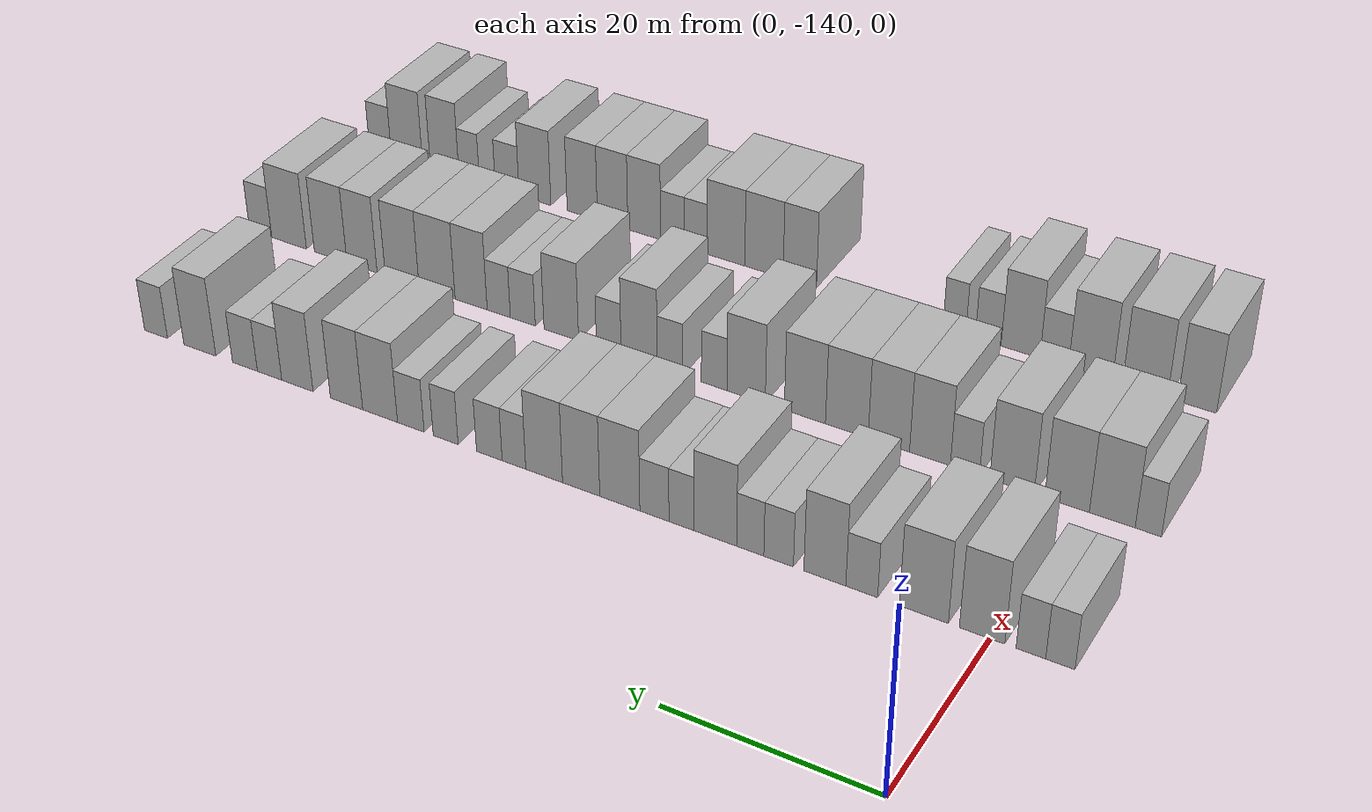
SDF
<sdf version="1.6">
 <world name="default">
  <model name="building_27">
   <static>1</static>
   <pose>25.0000 -146.1380 0 0.000000 0.000000 0.000000</pose>
   <link name="link">
    <pose>0 0 3.00 0 0 0</pose>
    <collision name="collision"><geometry><box><size>10.0000 2.5580 6.0000</size></box></geometry></collision>
    <visual name="visual">
     <cast_shadows>0</cast_shadows>
     <geometry><box><size>10.0000 2.5580 6.0000</size></box></geometry>
     <material>
      <script>
       <uri>model://HANNAS_wall/materials/scripts</uri>
       <uri>model://HANNAS_wall/materials/textures</uri>
       <name>vrc/HANNAS_wall</name>
      </script>
     </material>
    </visual>
   </link>
  </model>
  <model name="building_28">
   <static>1</static>
   <pose>25.0000 -143.5564 0 0.000000 0.000000 0.000000</pose>
   <link name="link">
    <pose>0 0 3.00 0 0 0</pose>
    <collision name="collision"><geometry><box><size>10.0000 2.6051 6.0000</size></box></geometry></collision>
    <visual name="visual">
     <cast_shadows>0</cast_shadows>
     <geometry><box><size>10.0000 2.6051 6.0000</size></box></geometry>
     <material>
      <script>
       <uri>model://HANNAS_wall/materials/scripts</uri>
       <uri>model://HANNAS_wall/materials/textures</uri>
       <name>vrc/HANNAS_wall</name>
      </script>
     </material>
    </visual>
   </link>
  </model>
  <model name="building_29">
   <static>1</static>
   <pose>25.0000 -139.2186 0 0.000000 0.000000 0.000000</pose>
   <link name="link">
    <pose>0 0 4.50 0 0 0</pose>
    <collision name="collision"><geometry><box><size>10.0000 4.0704 9.0000</size></box></geometry></collision>
    <visual name="visual">
     <cast_shadows>0</cast_shadows>
     <geometry><box><size>10.0000 4.0704 9.0000</size></box></geometry>
     <material>
      <script>
       <uri>model://HANNAS_wall/materials/scripts</uri>
       <uri>model://HANNAS_wall/materials/textures</uri>
       <name>vrc/HANNAS_wall</name>
      </script>
     </material>
    </visual>
   </link>
  </model>
  <model name="building_30">
   <static>1</static>
   <pose>25.0000 -133.9359 0 0.000000 0.000000 0.000000</pose>
   <link name="link">
    <pose>0 0 4.50 0 0 0</pose>
    <collision name="collision"><geometry><box><size>10.0000 4.4950 9.0000</size></box></geometry></collision>
    <visual name="visual">
     <cast_shadows>0</cast_shadows>
     <geometry><box><size>10.0000 4.4950 9.0000</size></box></geometry>
     <material>
      <script>
       <uri>model://HANNAS_wall/materials/scripts</uri>
       <uri>model://HANNAS_wall/materials/textures</uri>
       <name>vrc/HANNAS_wall</name>
      </script>
     </material>
    </visual>
   </link>
  </model>
  <model name="building_31">
   <static>1</static>
   <pose>25.0000 -128.1968 0 0.000000 0.000000 0.000000</pose>
   <link name="link">
    <pose>0 0 3.00 0 0 0</pose>
    <collision name="collision"><geometry><box><size>10.0000 2.9834 6.0000</size></box></geometry></collision>
    <visual name="visual">
     <cast_shadows>0</cast_shadows>
     <geometry><box><size>10.0000 2.9834 6.0000</size></box></geometry>
     <material>
      <script>
       <uri>model://HANNAS_wall/materials/scripts</uri>
       <uri>model://HANNAS_wall/materials/textures</uri>
       <name>vrc/HANNAS_wall</name>
      </script>
     </material>
    </visual>
   </link>
  </model>
  <model name="building_32">
   <static>1</static>
   <pose>25.0000 -124.7177 0 0.000000 0.000000 0.000000</pose>
   <link name="link">
    <pose>0 0 4.50 0 0 0</pose>
    <collision name="collision"><geometry><box><size>10.0000 3.9747 9.0000</size></box></geometry></collision>
    <visual name="visual">
     <cast_shadows>0</cast_shadows>
     <geometry><box><size>10.0000 3.9747 9.0000</size></box></geometry>
     <material>
      <script>
       <uri>model://HANNAS_wall/materials/scripts</uri>
       <uri>model://HANNAS_wall/materials/textures</uri>
       <name>vrc/HANNAS_wall</name>
      </script>
     </material>
    </visual>
   </link>
  </model>
  <model name="building_33">
   <static>1</static>
   <pose>25.0000 -120.3005 0 0.000000 0.000000 0.000000</pose>
   <link name="link">
    <pose>0 0 3.00 0 0 0</pose>
    <collision name="collision"><geometry><box><size>10.0000 2.8597 6.0000</size></box></geometry></collision>
    <visual name="visual">
     <cast_shadows>0</cast_shadows>
     <geometry><box><size>10.0000 2.8597 6.0000</size></box></geometry>
     <material>
      <script>
       <uri>model://HANNAS_wall/materials/scripts</uri>
       <uri>model://HANNAS_wall/materials/textures</uri>
       <name>vrc/HANNAS_wall</name>
      </script>
     </material>
    </visual>
   </link>
  </model>
  <model name="building_34">
   <static>1</static>
   <pose>25.0000 -117.5436 0 0.000000 0.000000 0.000000</pose>
   <link name="link">
    <pose>0 0 3.00 0 0 0</pose>
    <collision name="collision"><geometry><box><size>10.0000 2.6541 6.0000</size></box></geometry></collision>
    <visual name="visual">
     <cast_shadows>0</cast_shadows>
     <geometry><box><size>10.0000 2.6541 6.0000</size></box></geometry>
     <material>
      <script>
       <uri>model://HANNAS_wall/materials/scripts</uri>
       <uri>model://HANNAS_wall/materials/textures</uri>
       <name>vrc/HANNAS_wall</name>
      </script>
     </material>
    </visual>
   </link>
  </model>
  <model name="building_35">
   <static>1</static>
   <pose>25.0000 -114.0958 0 0.000000 0.000000 0.000000</pose>
   <link name="link">
    <pose>0 0 4.50 0 0 0</pose>
    <collision name="collision"><geometry><box><size>10.0000 4.2415 9.0000</size></box></geometry></collision>
    <visual name="visual">
     <cast_shadows>0</cast_shadows>
     <geometry><box><size>10.0000 4.2415 9.0000</size></box></geometry>
     <material>
      <script>
       <uri>model://HANNAS_wall/materials/scripts</uri>
       <uri>model://HANNAS_wall/materials/textures</uri>
       <name>vrc/HANNAS_wall</name>
      </script>
     </material>
    </visual>
   </link>
  </model>
  <model name="building_36">
   <static>1</static>
   <pose>25.0000 -110.7415 0 0.000000 0.000000 0.000000</pose>
   <link name="link">
    <pose>0 0 3.00 0 0 0</pose>
    <collision name="collision"><geometry><box><size>10.0000 2.4672 6.0000</size></box></geometry></collision>
    <visual name="visual">
     <cast_shadows>0</cast_shadows>
     <geometry><box><size>10.0000 2.4672 6.0000</size></box></geometry>
     <material>
      <script>
       <uri>model://HANNAS_wall/materials/scripts</uri>
       <uri>model://HANNAS_wall/materials/textures</uri>
       <name>vrc/HANNAS_wall</name>
      </script>
     </material>
    </visual>
   </link>
  </model>
  <model name="building_37">
   <static>1</static>
   <pose>25.0000 -108.0367 0 0.000000 0.000000 0.000000</pose>
   <link name="link">
    <pose>0 0 3.00 0 0 0</pose>
    <collision name="collision"><geometry><box><size>10.0000 2.9423 6.0000</size></box></geometry></collision>
    <visual name="visual">
     <cast_shadows>0</cast_shadows>
     <geometry><box><size>10.0000 2.9423 6.0000</size></box></geometry>
     <material>
      <script>
       <uri>model://HANNAS_wall/materials/scripts</uri>
       <uri>model://HANNAS_wall/materials/textures</uri>
       <name>vrc/HANNAS_wall</name>
      </script>
     </material>
    </visual>
   </link>
  </model>
  <model name="building_38">
   <static>1</static>
   <pose>25.0000 -104.5135 0 0.000000 0.000000 0.000000</pose>
   <link name="link">
    <pose>0 0 4.50 0 0 0</pose>
    <collision name="collision"><geometry><box><size>10.0000 4.1042 9.0000</size></box></geometry></collision>
    <visual name="visual">
     <cast_shadows>0</cast_shadows>
     <geometry><box><size>10.0000 4.1042 9.0000</size></box></geometry>
     <material>
      <script>
       <uri>model://HANNAS_wall/materials/scripts</uri>
       <uri>model://HANNAS_wall/materials/textures</uri>
       <name>vrc/HANNAS_wall</name>
      </script>
     </material>
    </visual>
   </link>
  </model>
  <model name="building_39">
   <static>1</static>
   <pose>25.0000 -100.5276 0 0.000000 0.000000 0.000000</pose>
   <link name="link">
    <pose>0 0 4.50 0 0 0</pose>
    <collision name="collision"><geometry><box><size>10.0000 3.8674 9.0000</size></box></geometry></collision>
    <visual name="visual">
     <cast_shadows>0</cast_shadows>
     <geometry><box><size>10.0000 3.8674 9.0000</size></box></geometry>
     <material>
      <script>
       <uri>model://HANNAS_wall/materials/scripts</uri>
       <uri>model://HANNAS_wall/materials/textures</uri>
       <name>vrc/HANNAS_wall</name>
      </script>
     </material>
    </visual>
   </link>
  </model>
  <model name="building_40">
   <static>1</static>
   <pose>25.0000 -96.6543 0 0.000000 0.000000 0.000000</pose>
   <link name="link">
    <pose>0 0 4.50 0 0 0</pose>
    <collision name="collision"><geometry><box><size>10.0000 3.8792 9.0000</size></box></geometry></collision>
    <visual name="visual">
     <cast_shadows>0</cast_shadows>
     <geometry><box><size>10.0000 3.8792 9.0000</size></box></geometry>
     <material>
      <script>
       <uri>model://HANNAS_wall/materials/scripts</uri>
       <uri>model://HANNAS_wall/materials/textures</uri>
       <name>vrc/HANNAS_wall</name>
      </script>
     </material>
    </visual>
   </link>
  </model>
  <model name="building_41">
   <static>1</static>
   <pose>25.0000 -93.4547 0 0.000000 0.000000 0.000000</pose>
   <link name="link">
    <pose>0 0 3.00 0 0 0</pose>
    <collision name="collision"><geometry><box><size>10.0000 2.5201 6.0000</size></box></geometry></collision>
    <visual name="visual">
     <cast_shadows>0</cast_shadows>
     <geometry><box><size>10.0000 2.5201 6.0000</size></box></geometry>
     <material>
      <script>
       <uri>model://HANNAS_wall/materials/scripts</uri>
       <uri>model://HANNAS_wall/materials/textures</uri>
       <name>vrc/HANNAS_wall</name>
      </script>
     </material>
    </visual>
   </link>
  </model>
  <model name="building_42">
   <static>1</static>
   <pose>25.0000 -90.8179 0 0.000000 0.000000 0.000000</pose>
   <link name="link">
    <pose>0 0 3.00 0 0 0</pose>
    <collision name="collision"><geometry><box><size>10.0000 2.7535 6.0000</size></box></geometry></collision>
    <visual name="visual">
     <cast_shadows>0</cast_shadows>
     <geometry><box><size>10.0000 2.7535 6.0000</size></box></geometry>
     <material>
      <script>
       <uri>model://HANNAS_wall/materials/scripts</uri>
       <uri>model://HANNAS_wall/materials/textures</uri>
       <name>vrc/HANNAS_wall</name>
      </script>
     </material>
    </visual>
   </link>
  </model>
  <model name="building_43">
   <static>1</static>
   <pose>25.0000 -86.0773 0 0.000000 0.000000 0.000000</pose>
   <link name="link">
    <pose>0 0 3.00 0 0 0</pose>
    <collision name="collision"><geometry><box><size>10.0000 2.7277 6.0000</size></box></geometry></collision>
    <visual name="visual">
     <cast_shadows>0</cast_shadows>
     <geometry><box><size>10.0000 2.7277 6.0000</size></box></geometry>
     <material>
      <script>
       <uri>model://HANNAS_wall/materials/scripts</uri>
       <uri>model://HANNAS_wall/materials/textures</uri>
       <name>vrc/HANNAS_wall</name>
      </script>
     </material>
    </visual>
   </link>
  </model>
  <model name="building_44">
   <static>1</static>
   <pose>25.0000 -82.2348 0 0.000000 0.000000 0.000000</pose>
   <link name="link">
    <pose>0 0 3.00 0 0 0</pose>
    <collision name="collision"><geometry><box><size>10.0000 2.9574 6.0000</size></box></geometry></collision>
    <visual name="visual">
     <cast_shadows>0</cast_shadows>
     <geometry><box><size>10.0000 2.9574 6.0000</size></box></geometry>
     <material>
      <script>
       <uri>model://HANNAS_wall/materials/scripts</uri>
       <uri>model://HANNAS_wall/materials/textures</uri>
       <name>vrc/HANNAS_wall</name>
      </script>
     </material>
    </visual>
   </link>
  </model>
  <model name="building_45">
   <static>1</static>
   <pose>25.0000 -78.7970 0 0.000000 0.000000 0.000000</pose>
   <link name="link">
    <pose>0 0 4.50 0 0 0</pose>
    <collision name="collision"><geometry><box><size>10.0000 3.9181 9.0000</size></box></geometry></collision>
    <visual name="visual">
     <cast_shadows>0</cast_shadows>
     <geometry><box><size>10.0000 3.9181 9.0000</size></box></geometry>
     <material>
      <script>
       <uri>model://HANNAS_wall/materials/scripts</uri>
       <uri>model://HANNAS_wall/materials/textures</uri>
       <name>vrc/HANNAS_wall</name>
      </script>
     </material>
    </visual>
   </link>
  </model>
  <model name="building_46">
   <static>1</static>
   <pose>25.0000 -74.9980 0 0.000000 0.000000 0.000000</pose>
   <link name="link">
    <pose>0 0 4.50 0 0 0</pose>
    <collision name="collision"><geometry><box><size>10.0000 3.6799 9.0000</size></box></geometry></collision>
    <visual name="visual">
     <cast_shadows>0</cast_shadows>
     <geometry><box><size>10.0000 3.6799 9.0000</size></box></geometry>
     <material>
      <script>
       <uri>model://HANNAS_wall/materials/scripts</uri>
       <uri>model://HANNAS_wall/materials/textures</uri>
       <name>vrc/HANNAS_wall</name>
      </script>
     </material>
    </visual>
   </link>
  </model>
  <model name="building_47">
   <static>1</static>
   <pose>25.0000 -69.3368 0 0.000000 0.000000 0.000000</pose>
   <link name="link">
    <pose>0 0 4.50 0 0 0</pose>
    <collision name="collision"><geometry><box><size>10.0000 3.6425 9.0000</size></box></geometry></collision>
    <visual name="visual">
     <cast_shadows>0</cast_shadows>
     <geometry><box><size>10.0000 3.6425 9.0000</size></box></geometry>
     <material>
      <script>
       <uri>model://HANNAS_wall/materials/scripts</uri>
       <uri>model://HANNAS_wall/materials/textures</uri>
       <name>vrc/HANNAS_wall</name>
      </script>
     </material>
    </visual>
   </link>
  </model>
  <model name="building_48">
   <static>1</static>
   <pose>25.0000 -66.0858 0 0.000000 0.000000 0.000000</pose>
   <link name="link">
    <pose>0 0 3.00 0 0 0</pose>
    <collision name="collision"><geometry><box><size>10.0000 2.8594 6.0000</size></box></geometry></collision>
    <visual name="visual">
     <cast_shadows>0</cast_shadows>
     <geometry><box><size>10.0000 2.8594 6.0000</size></box></geometry>
     <material>
      <script>
       <uri>model://HANNAS_wall/materials/scripts</uri>
       <uri>model://HANNAS_wall/materials/textures</uri>
       <name>vrc/HANNAS_wall</name>
      </script>
     </material>
    </visual>
   </link>
  </model>
  <model name="building_49">
   <static>1</static>
   <pose>25.0000 -63.1796 0 0.000000 0.000000 0.000000</pose>
   <link name="link">
    <pose>0 0 3.00 0 0 0</pose>
    <collision name="collision"><geometry><box><size>10.0000 2.9530 6.0000</size></box></geometry></collision>
    <visual name="visual">
     <cast_shadows>0</cast_shadows>
     <geometry><box><size>10.0000 2.9530 6.0000</size></box></geometry>
     <material>
      <script>
       <uri>model://HANNAS_wall/materials/scripts</uri>
       <uri>model://HANNAS_wall/materials/textures</uri>
       <name>vrc/HANNAS_wall</name>
      </script>
     </material>
    </visual>
   </link>
  </model>
  <model name="building_50">
   <static>1</static>
   <pose>25.0000 -57.7720 0 0.000000 0.000000 0.000000</pose>
   <link name="link">
    <pose>0 0 4.50 0 0 0</pose>
    <collision name="collision"><geometry><box><size>10.0000 3.8622 9.0000</size></box></geometry></collision>
    <visual name="visual">
     <cast_shadows>0</cast_shadows>
     <geometry><box><size>10.0000 3.8622 9.0000</size></box></geometry>
     <material>
      <script>
       <uri>model://HANNAS_wall/materials/scripts</uri>
       <uri>model://HANNAS_wall/materials/textures</uri>
       <name>vrc/HANNAS_wall</name>
      </script>
     </material>
    </visual>
   </link>
  </model>
  <model name="building_51">
   <static>1</static>
   <pose>25.0000 -52.4273 0 0.000000 0.000000 0.000000</pose>
   <link name="link">
    <pose>0 0 3.00 0 0 0</pose>
    <collision name="collision"><geometry><box><size>10.0000 2.8271 6.0000</size></box></geometry></collision>
    <visual name="visual">
     <cast_shadows>0</cast_shadows>
     <geometry><box><size>10.0000 2.8271 6.0000</size></box></geometry>
     <material>
      <script>
       <uri>model://HANNAS_wall/materials/scripts</uri>
       <uri>model://HANNAS_wall/materials/textures</uri>
       <name>vrc/HANNAS_wall</name>
      </script>
     </material>
    </visual>
   </link>
  </model>
  <model name="building_146">
   <static>1</static>
   <pose>44.0000 -146.6468 0 0.000000 0.000000 0.000000</pose>
   <link name="link">
    <pose>0 0 3.00 0 0 0</pose>
    <collision name="collision"><geometry><box><size>10.0000 2.4189 6.0000</size></box></geometry></collision>
    <visual name="visual">
     <cast_shadows>0</cast_shadows>
     <geometry><box><size>10.0000 2.4189 6.0000</size></box></geometry>
     <material>
      <script>
       <uri>model://HANNAS_wall/materials/scripts</uri>
       <uri>model://HANNAS_wall/materials/textures</uri>
       <name>vrc/HANNAS_wall</name>
      </script>
     </material>
    </visual>
   </link>
  </model>
  <model name="building_147">
   <static>1</static>
   <pose>44.0000 -143.3100 0 0.000000 0.000000 0.000000</pose>
   <link name="link">
    <pose>0 0 4.50 0 0 0</pose>
    <collision name="collision"><geometry><box><size>10.0000 4.2547 9.0000</size></box></geometry></collision>
    <visual name="visual">
     <cast_shadows>0</cast_shadows>
     <geometry><box><size>10.0000 4.2547 9.0000</size></box></geometry>
     <material>
      <script>
       <uri>model://HANNAS_wall/materials/scripts</uri>
       <uri>model://HANNAS_wall/materials/textures</uri>
       <name>vrc/HANNAS_wall</name>
      </script>
     </material>
    </visual>
   </link>
  </model>
  <model name="building_148">
   <static>1</static>
   <pose>44.0000 -139.0746 0 0.000000 0.000000 0.000000</pose>
   <link name="link">
    <pose>0 0 4.50 0 0 0</pose>
    <collision name="collision"><geometry><box><size>10.0000 4.2160 9.0000</size></box></geometry></collision>
    <visual name="visual">
     <cast_shadows>0</cast_shadows>
     <geometry><box><size>10.0000 4.2160 9.0000</size></box></geometry>
     <material>
      <script>
       <uri>model://HANNAS_wall/materials/scripts</uri>
       <uri>model://HANNAS_wall/materials/textures</uri>
       <name>vrc/HANNAS_wall</name>
      </script>
     </material>
    </visual>
   </link>
  </model>
  <model name="building_149">
   <static>1</static>
   <pose>44.0000 -133.8319 0 0.000000 0.000000 0.000000</pose>
   <link name="link">
    <pose>0 0 4.50 0 0 0</pose>
    <collision name="collision"><geometry><box><size>10.0000 4.2694 9.0000</size></box></geometry></collision>
    <visual name="visual">
     <cast_shadows>0</cast_shadows>
     <geometry><box><size>10.0000 4.2694 9.0000</size></box></geometry>
     <material>
      <script>
       <uri>model://HANNAS_wall/materials/scripts</uri>
       <uri>model://HANNAS_wall/materials/textures</uri>
       <name>vrc/HANNAS_wall</name>
      </script>
     </material>
    </visual>
   </link>
  </model>
  <model name="building_150">
   <static>1</static>
   <pose>44.0000 -129.2747 0 0.000000 0.000000 0.000000</pose>
   <link name="link">
    <pose>0 0 3.00 0 0 0</pose>
    <collision name="collision"><geometry><box><size>10.0000 2.8450 6.0000</size></box></geometry></collision>
    <visual name="visual">
     <cast_shadows>0</cast_shadows>
     <geometry><box><size>10.0000 2.8450 6.0000</size></box></geometry>
     <material>
      <script>
       <uri>model://HANNAS_wall/materials/scripts</uri>
       <uri>model://HANNAS_wall/materials/textures</uri>
       <name>vrc/HANNAS_wall</name>
      </script>
     </material>
    </visual>
   </link>
  </model>
  <model name="building_151">
   <static>1</static>
   <pose>44.0000 -125.8301 0 0.000000 0.000000 0.000000</pose>
   <link name="link">
    <pose>0 0 4.50 0 0 0</pose>
    <collision name="collision"><geometry><box><size>10.0000 4.0442 9.0000</size></box></geometry></collision>
    <visual name="visual">
     <cast_shadows>0</cast_shadows>
     <geometry><box><size>10.0000 4.0442 9.0000</size></box></geometry>
     <material>
      <script>
       <uri>model://HANNAS_wall/materials/scripts</uri>
       <uri>model://HANNAS_wall/materials/textures</uri>
       <name>vrc/HANNAS_wall</name>
      </script>
     </material>
    </visual>
   </link>
  </model>
  <model name="building_152">
   <static>1</static>
   <pose>44.0000 -121.7290 0 0.000000 0.000000 0.000000</pose>
   <link name="link">
    <pose>0 0 4.50 0 0 0</pose>
    <collision name="collision"><geometry><box><size>10.0000 4.1580 9.0000</size></box></geometry></collision>
    <visual name="visual">
     <cast_shadows>0</cast_shadows>
     <geometry><box><size>10.0000 4.1580 9.0000</size></box></geometry>
     <material>
      <script>
       <uri>model://HANNAS_wall/materials/scripts</uri>
       <uri>model://HANNAS_wall/materials/textures</uri>
       <name>vrc/HANNAS_wall</name>
      </script>
     </material>
    </visual>
   </link>
  </model>
  <model name="building_153">
   <static>1</static>
   <pose>44.0000 -117.4698 0 0.000000 0.000000 0.000000</pose>
   <link name="link">
    <pose>0 0 4.50 0 0 0</pose>
    <collision name="collision"><geometry><box><size>10.0000 4.3604 9.0000</size></box></geometry></collision>
    <visual name="visual">
     <cast_shadows>0</cast_shadows>
     <geometry><box><size>10.0000 4.3604 9.0000</size></box></geometry>
     <material>
      <script>
       <uri>model://HANNAS_wall/materials/scripts</uri>
       <uri>model://HANNAS_wall/materials/textures</uri>
       <name>vrc/HANNAS_wall</name>
      </script>
     </material>
    </visual>
   </link>
  </model>
  <model name="building_154">
   <static>1</static>
   <pose>44.0000 -113.1627 0 0.000000 0.000000 0.000000</pose>
   <link name="link">
    <pose>0 0 4.50 0 0 0</pose>
    <collision name="collision"><geometry><box><size>10.0000 4.2538 9.0000</size></box></geometry></collision>
    <visual name="visual">
     <cast_shadows>0</cast_shadows>
     <geometry><box><size>10.0000 4.2538 9.0000</size></box></geometry>
     <material>
      <script>
       <uri>model://HANNAS_wall/materials/scripts</uri>
       <uri>model://HANNAS_wall/materials/textures</uri>
       <name>vrc/HANNAS_wall</name>
      </script>
     </material>
    </visual>
   </link>
  </model>
  <model name="building_155">
   <static>1</static>
   <pose>44.0000 -107.0063 0 0.000000 0.000000 0.000000</pose>
   <link name="link">
    <pose>0 0 4.50 0 0 0</pose>
    <collision name="collision"><geometry><box><size>10.0000 4.0589 9.0000</size></box></geometry></collision>
    <visual name="visual">
     <cast_shadows>0</cast_shadows>
     <geometry><box><size>10.0000 4.0589 9.0000</size></box></geometry>
     <material>
      <script>
       <uri>model://HANNAS_wall/materials/scripts</uri>
       <uri>model://HANNAS_wall/materials/textures</uri>
       <name>vrc/HANNAS_wall</name>
      </script>
     </material>
    </visual>
   </link>
  </model>
  <model name="building_156">
   <static>1</static>
   <pose>44.0000 -103.6064 0 0.000000 0.000000 0.000000</pose>
   <link name="link">
    <pose>0 0 3.00 0 0 0</pose>
    <collision name="collision"><geometry><box><size>10.0000 2.7409 6.0000</size></box></geometry></collision>
    <visual name="visual">
     <cast_shadows>0</cast_shadows>
     <geometry><box><size>10.0000 2.7409 6.0000</size></box></geometry>
     <material>
      <script>
       <uri>model://HANNAS_wall/materials/scripts</uri>
       <uri>model://HANNAS_wall/materials/textures</uri>
       <name>vrc/HANNAS_wall</name>
      </script>
     </material>
    </visual>
   </link>
  </model>
  <model name="building_157">
   <static>1</static>
   <pose>44.0000 -98.8428 0 0.000000 0.000000 0.000000</pose>
   <link name="link">
    <pose>0 0 3.00 0 0 0</pose>
    <collision name="collision"><geometry><box><size>10.0000 2.7862 6.0000</size></box></geometry></collision>
    <visual name="visual">
     <cast_shadows>0</cast_shadows>
     <geometry><box><size>10.0000 2.7862 6.0000</size></box></geometry>
     <material>
      <script>
       <uri>model://HANNAS_wall/materials/scripts</uri>
       <uri>model://HANNAS_wall/materials/textures</uri>
       <name>vrc/HANNAS_wall</name>
      </script>
     </material>
    </visual>
   </link>
  </model>
  <model name="building_158">
   <static>1</static>
   <pose>44.0000 -95.4618 0 0.000000 0.000000 0.000000</pose>
   <link name="link">
    <pose>0 0 4.50 0 0 0</pose>
    <collision name="collision"><geometry><box><size>10.0000 3.9758 9.0000</size></box></geometry></collision>
    <visual name="visual">
     <cast_shadows>0</cast_shadows>
     <geometry><box><size>10.0000 3.9758 9.0000</size></box></geometry>
     <material>
      <script>
       <uri>model://HANNAS_wall/materials/scripts</uri>
       <uri>model://HANNAS_wall/materials/textures</uri>
       <name>vrc/HANNAS_wall</name>
      </script>
     </material>
    </visual>
   </link>
  </model>
  <model name="building_159">
   <static>1</static>
   <pose>44.0000 -92.0936 0 0.000000 0.000000 0.000000</pose>
   <link name="link">
    <pose>0 0 3.00 0 0 0</pose>
    <collision name="collision"><geometry><box><size>10.0000 2.7607 6.0000</size></box></geometry></collision>
    <visual name="visual">
     <cast_shadows>0</cast_shadows>
     <geometry><box><size>10.0000 2.7607 6.0000</size></box></geometry>
     <material>
      <script>
       <uri>model://HANNAS_wall/materials/scripts</uri>
       <uri>model://HANNAS_wall/materials/textures</uri>
       <name>vrc/HANNAS_wall</name>
      </script>
     </material>
    </visual>
   </link>
  </model>
  <model name="building_160">
   <static>1</static>
   <pose>44.0000 -86.7491 0 0.000000 0.000000 0.000000</pose>
   <link name="link">
    <pose>0 0 4.50 0 0 0</pose>
    <collision name="collision"><geometry><box><size>10.0000 3.9282 9.0000</size></box></geometry></collision>
    <visual name="visual">
     <cast_shadows>0</cast_shadows>
     <geometry><box><size>10.0000 3.9282 9.0000</size></box></geometry>
     <material>
      <script>
       <uri>model://HANNAS_wall/materials/scripts</uri>
       <uri>model://HANNAS_wall/materials/textures</uri>
       <name>vrc/HANNAS_wall</name>
      </script>
     </material>
    </visual>
   </link>
  </model>
  <model name="building_161">
   <static>1</static>
   <pose>44.0000 -82.3471 0 0.000000 0.000000 0.000000</pose>
   <link name="link">
    <pose>0 0 3.00 0 0 0</pose>
    <collision name="collision"><geometry><box><size>10.0000 2.8759 6.0000</size></box></geometry></collision>
    <visual name="visual">
     <cast_shadows>0</cast_shadows>
     <geometry><box><size>10.0000 2.8759 6.0000</size></box></geometry>
     <material>
      <script>
       <uri>model://HANNAS_wall/materials/scripts</uri>
       <uri>model://HANNAS_wall/materials/textures</uri>
       <name>vrc/HANNAS_wall</name>
      </script>
     </material>
    </visual>
   </link>
  </model>
  <model name="building_162">
   <static>1</static>
   <pose>44.0000 -79.5609 0 0.000000 0.000000 0.000000</pose>
   <link name="link">
    <pose>0 0 3.00 0 0 0</pose>
    <collision name="collision"><geometry><box><size>10.0000 2.6965 6.0000</size></box></geometry></collision>
    <visual name="visual">
     <cast_shadows>0</cast_shadows>
     <geometry><box><size>10.0000 2.6965 6.0000</size></box></geometry>
     <material>
      <script>
       <uri>model://HANNAS_wall/materials/scripts</uri>
       <uri>model://HANNAS_wall/materials/textures</uri>
       <name>vrc/HANNAS_wall</name>
      </script>
     </material>
    </visual>
   </link>
  </model>
  <model name="building_163">
   <static>1</static>
   <pose>44.0000 -76.3268 0 0.000000 0.000000 0.000000</pose>
   <link name="link">
    <pose>0 0 4.50 0 0 0</pose>
    <collision name="collision"><geometry><box><size>10.0000 3.7716 9.0000</size></box></geometry></collision>
    <visual name="visual">
     <cast_shadows>0</cast_shadows>
     <geometry><box><size>10.0000 3.7716 9.0000</size></box></geometry>
     <material>
      <script>
       <uri>model://HANNAS_wall/materials/scripts</uri>
       <uri>model://HANNAS_wall/materials/textures</uri>
       <name>vrc/HANNAS_wall</name>
      </script>
     </material>
    </visual>
   </link>
  </model>
  <model name="building_164">
   <static>1</static>
   <pose>44.0000 -72.2914 0 0.000000 0.000000 0.000000</pose>
   <link name="link">
    <pose>0 0 4.50 0 0 0</pose>
    <collision name="collision"><geometry><box><size>10.0000 4.2992 9.0000</size></box></geometry></collision>
    <visual name="visual">
     <cast_shadows>0</cast_shadows>
     <geometry><box><size>10.0000 4.2992 9.0000</size></box></geometry>
     <material>
      <script>
       <uri>model://HANNAS_wall/materials/scripts</uri>
       <uri>model://HANNAS_wall/materials/textures</uri>
       <name>vrc/HANNAS_wall</name>
      </script>
     </material>
    </visual>
   </link>
  </model>
  <model name="building_165">
   <static>1</static>
   <pose>44.0000 -68.1045 0 0.000000 0.000000 0.000000</pose>
   <link name="link">
    <pose>0 0 4.50 0 0 0</pose>
    <collision name="collision"><geometry><box><size>10.0000 4.0744 9.0000</size></box></geometry></collision>
    <visual name="visual">
     <cast_shadows>0</cast_shadows>
     <geometry><box><size>10.0000 4.0744 9.0000</size></box></geometry>
     <material>
      <script>
       <uri>model://HANNAS_wall/materials/scripts</uri>
       <uri>model://HANNAS_wall/materials/textures</uri>
       <name>vrc/HANNAS_wall</name>
      </script>
     </material>
    </visual>
   </link>
  </model>
  <model name="building_166">
   <static>1</static>
   <pose>44.0000 -63.2114 0 0.000000 0.000000 0.000000</pose>
   <link name="link">
    <pose>0 0 4.50 0 0 0</pose>
    <collision name="collision"><geometry><box><size>10.0000 3.7117 9.0000</size></box></geometry></collision>
    <visual name="visual">
     <cast_shadows>0</cast_shadows>
     <geometry><box><size>10.0000 3.7117 9.0000</size></box></geometry>
     <material>
      <script>
       <uri>model://HANNAS_wall/materials/scripts</uri>
       <uri>model://HANNAS_wall/materials/textures</uri>
       <name>vrc/HANNAS_wall</name>
      </script>
     </material>
    </visual>
   </link>
  </model>
  <model name="building_167">
   <static>1</static>
   <pose>44.0000 -59.3350 0 0.000000 0.000000 0.000000</pose>
   <link name="link">
    <pose>0 0 4.50 0 0 0</pose>
    <collision name="collision"><geometry><box><size>10.0000 4.0411 9.0000</size></box></geometry></collision>
    <visual name="visual">
     <cast_shadows>0</cast_shadows>
     <geometry><box><size>10.0000 4.0411 9.0000</size></box></geometry>
     <material>
      <script>
       <uri>model://HANNAS_wall/materials/scripts</uri>
       <uri>model://HANNAS_wall/materials/textures</uri>
       <name>vrc/HANNAS_wall</name>
      </script>
     </material>
    </visual>
   </link>
  </model>
  <model name="building_168">
   <static>1</static>
   <pose>44.0000 -54.1233 0 0.000000 0.000000 0.000000</pose>
   <link name="link">
    <pose>0 0 4.50 0 0 0</pose>
    <collision name="collision"><geometry><box><size>10.0000 4.3823 9.0000</size></box></geometry></collision>
    <visual name="visual">
     <cast_shadows>0</cast_shadows>
     <geometry><box><size>10.0000 4.3823 9.0000</size></box></geometry>
     <material>
      <script>
       <uri>model://HANNAS_wall/materials/scripts</uri>
       <uri>model://HANNAS_wall/materials/textures</uri>
       <name>vrc/HANNAS_wall</name>
      </script>
     </material>
    </visual>
   </link>
  </model>
  <model name="building_169">
   <static>1</static>
   <pose>44.0000 -50.5168 0 0.000000 0.000000 0.000000</pose>
   <link name="link">
    <pose>0 0 3.00 0 0 0</pose>
    <collision name="collision"><geometry><box><size>10.0000 2.8308 6.0000</size></box></geometry></collision>
    <visual name="visual">
     <cast_shadows>0</cast_shadows>
     <geometry><box><size>10.0000 2.8308 6.0000</size></box></geometry>
     <material>
      <script>
       <uri>model://HANNAS_wall/materials/scripts</uri>
       <uri>model://HANNAS_wall/materials/textures</uri>
       <name>vrc/HANNAS_wall</name>
      </script>
     </material>
    </visual>
   </link>
  </model>
  <model name="building_256">
   <static>1</static>
   <pose>63.0000 -144.3682 0 0.000000 0.000000 0.000000</pose>
   <link name="link">
    <pose>0 0 4.50 0 0 0</pose>
    <collision name="collision"><geometry><box><size>10.0000 3.7736 9.0000</size></box></geometry></collision>
    <visual name="visual">
     <cast_shadows>0</cast_shadows>
     <geometry><box><size>10.0000 3.7736 9.0000</size></box></geometry>
     <material>
      <script>
       <uri>model://HANNAS_wall/materials/scripts</uri>
       <uri>model://HANNAS_wall/materials/textures</uri>
       <name>vrc/HANNAS_wall</name>
      </script>
     </material>
    </visual>
   </link>
  </model>
  <model name="building_257">
   <static>1</static>
   <pose>63.0000 -139.2533 0 0.000000 0.000000 0.000000</pose>
   <link name="link">
    <pose>0 0 4.50 0 0 0</pose>
    <collision name="collision"><geometry><box><size>10.0000 4.4564 9.0000</size></box></geometry></collision>
    <visual name="visual">
     <cast_shadows>0</cast_shadows>
     <geometry><box><size>10.0000 4.4564 9.0000</size></box></geometry>
     <material>
      <script>
       <uri>model://HANNAS_wall/materials/scripts</uri>
       <uri>model://HANNAS_wall/materials/textures</uri>
       <name>vrc/HANNAS_wall</name>
      </script>
     </material>
    </visual>
   </link>
  </model>
  <model name="building_258">
   <static>1</static>
   <pose>63.0000 -133.8104 0 0.000000 0.000000 0.000000</pose>
   <link name="link">
    <pose>0 0 4.50 0 0 0</pose>
    <collision name="collision"><geometry><box><size>10.0000 4.4293 9.0000</size></box></geometry></collision>
    <visual name="visual">
     <cast_shadows>0</cast_shadows>
     <geometry><box><size>10.0000 4.4293 9.0000</size></box></geometry>
     <material>
      <script>
       <uri>model://HANNAS_wall/materials/scripts</uri>
       <uri>model://HANNAS_wall/materials/textures</uri>
       <name>vrc/HANNAS_wall</name>
      </script>
     </material>
    </visual>
   </link>
  </model>
  <model name="building_259">
   <static>1</static>
   <pose>63.0000 -130.1327 0 0.000000 0.000000 0.000000</pose>
   <link name="link">
    <pose>0 0 3.00 0 0 0</pose>
    <collision name="collision"><geometry><box><size>10.0000 2.9262 6.0000</size></box></geometry></collision>
    <visual name="visual">
     <cast_shadows>0</cast_shadows>
     <geometry><box><size>10.0000 2.9262 6.0000</size></box></geometry>
     <material>
      <script>
       <uri>model://HANNAS_wall/materials/scripts</uri>
       <uri>model://HANNAS_wall/materials/textures</uri>
       <name>vrc/HANNAS_wall</name>
      </script>
     </material>
    </visual>
   </link>
  </model>
  <model name="building_260">
   <static>1</static>
   <pose>63.0000 -126.6632 0 0.000000 0.000000 0.000000</pose>
   <link name="link">
    <pose>0 0 4.50 0 0 0</pose>
    <collision name="collision"><geometry><box><size>10.0000 4.0128 9.0000</size></box></geometry></collision>
    <visual name="visual">
     <cast_shadows>0</cast_shadows>
     <geometry><box><size>10.0000 4.0128 9.0000</size></box></geometry>
     <material>
      <script>
       <uri>model://HANNAS_wall/materials/scripts</uri>
       <uri>model://HANNAS_wall/materials/textures</uri>
       <name>vrc/HANNAS_wall</name>
      </script>
     </material>
    </visual>
   </link>
  </model>
  <model name="building_261">
   <static>1</static>
   <pose>63.0000 -123.3107 0 0.000000 0.000000 0.000000</pose>
   <link name="link">
    <pose>0 0 3.00 0 0 0</pose>
    <collision name="collision"><geometry><box><size>10.0000 2.6922 6.0000</size></box></geometry></collision>
    <visual name="visual">
     <cast_shadows>0</cast_shadows>
     <geometry><box><size>10.0000 2.6922 6.0000</size></box></geometry>
     <material>
      <script>
       <uri>model://HANNAS_wall/materials/scripts</uri>
       <uri>model://HANNAS_wall/materials/textures</uri>
       <name>vrc/HANNAS_wall</name>
      </script>
     </material>
    </visual>
   </link>
  </model>
  <model name="building_262">
   <static>1</static>
   <pose>63.0000 -119.7622 0 0.000000 0.000000 0.000000</pose>
   <link name="link">
    <pose>0 0 3.00 0 0 0</pose>
    <collision name="collision"><geometry><box><size>10.0000 2.4047 6.0000</size></box></geometry></collision>
    <visual name="visual">
     <cast_shadows>0</cast_shadows>
     <geometry><box><size>10.0000 2.4047 6.0000</size></box></geometry>
     <material>
      <script>
       <uri>model://HANNAS_wall/materials/scripts</uri>
       <uri>model://HANNAS_wall/materials/textures</uri>
       <name>vrc/HANNAS_wall</name>
      </script>
     </material>
    </visual>
   </link>
  </model>
  <model name="building_263">
   <static>1</static>
   <pose>63.0000 -102.9352 0 0.000000 0.000000 0.000000</pose>
   <link name="link">
    <pose>0 0 4.50 0 0 0</pose>
    <collision name="collision"><geometry><box><size>10.0000 3.7498 9.0000</size></box></geometry></collision>
    <visual name="visual">
     <cast_shadows>0</cast_shadows>
     <geometry><box><size>10.0000 3.7498 9.0000</size></box></geometry>
     <material>
      <script>
       <uri>model://HANNAS_wall/materials/scripts</uri>
       <uri>model://HANNAS_wall/materials/textures</uri>
       <name>vrc/HANNAS_wall</name>
      </script>
     </material>
    </visual>
   </link>
  </model>
  <model name="building_264">
   <static>1</static>
   <pose>63.0000 -98.8935 0 0.000000 0.000000 0.000000</pose>
   <link name="link">
    <pose>0 0 4.50 0 0 0</pose>
    <collision name="collision"><geometry><box><size>10.0000 4.3337 9.0000</size></box></geometry></collision>
    <visual name="visual">
     <cast_shadows>0</cast_shadows>
     <geometry><box><size>10.0000 4.3337 9.0000</size></box></geometry>
     <material>
      <script>
       <uri>model://HANNAS_wall/materials/scripts</uri>
       <uri>model://HANNAS_wall/materials/textures</uri>
       <name>vrc/HANNAS_wall</name>
      </script>
     </material>
    </visual>
   </link>
  </model>
  <model name="building_265">
   <static>1</static>
   <pose>63.0000 -94.5536 0 0.000000 0.000000 0.000000</pose>
   <link name="link">
    <pose>0 0 4.50 0 0 0</pose>
    <collision name="collision"><geometry><box><size>10.0000 4.3461 9.0000</size></box></geometry></collision>
    <visual name="visual">
     <cast_shadows>0</cast_shadows>
     <geometry><box><size>10.0000 4.3461 9.0000</size></box></geometry>
     <material>
      <script>
       <uri>model://HANNAS_wall/materials/scripts</uri>
       <uri>model://HANNAS_wall/materials/textures</uri>
       <name>vrc/HANNAS_wall</name>
      </script>
     </material>
    </visual>
   </link>
  </model>
  <model name="building_266">
   <static>1</static>
   <pose>63.0000 -91.0532 0 0.000000 0.000000 0.000000</pose>
   <link name="link">
    <pose>0 0 3.00 0 0 0</pose>
    <collision name="collision"><geometry><box><size>10.0000 2.6548 6.0000</size></box></geometry></collision>
    <visual name="visual">
     <cast_shadows>0</cast_shadows>
     <geometry><box><size>10.0000 2.6548 6.0000</size></box></geometry>
     <material>
      <script>
       <uri>model://HANNAS_wall/materials/scripts</uri>
       <uri>model://HANNAS_wall/materials/textures</uri>
       <name>vrc/HANNAS_wall</name>
      </script>
     </material>
    </visual>
   </link>
  </model>
  <model name="building_267">
   <static>1</static>
   <pose>63.0000 -88.3461 0 0.000000 0.000000 0.000000</pose>
   <link name="link">
    <pose>0 0 3.00 0 0 0</pose>
    <collision name="collision"><geometry><box><size>10.0000 2.7595 6.0000</size></box></geometry></collision>
    <visual name="visual">
     <cast_shadows>0</cast_shadows>
     <geometry><box><size>10.0000 2.7595 6.0000</size></box></geometry>
     <material>
      <script>
       <uri>model://HANNAS_wall/materials/scripts</uri>
       <uri>model://HANNAS_wall/materials/textures</uri>
       <name>vrc/HANNAS_wall</name>
      </script>
     </material>
    </visual>
   </link>
  </model>
  <model name="building_268">
   <static>1</static>
   <pose>63.0000 -85.0281 0 0.000000 0.000000 0.000000</pose>
   <link name="link">
    <pose>0 0 4.50 0 0 0</pose>
    <collision name="collision"><geometry><box><size>10.0000 3.8767 9.0000</size></box></geometry></collision>
    <visual name="visual">
     <cast_shadows>0</cast_shadows>
     <geometry><box><size>10.0000 3.8767 9.0000</size></box></geometry>
     <material>
      <script>
       <uri>model://HANNAS_wall/materials/scripts</uri>
       <uri>model://HANNAS_wall/materials/textures</uri>
       <name>vrc/HANNAS_wall</name>
      </script>
     </material>
    </visual>
   </link>
  </model>
  <model name="building_269">
   <static>1</static>
   <pose>63.0000 -81.2633 0 0.000000 0.000000 0.000000</pose>
   <link name="link">
    <pose>0 0 4.50 0 0 0</pose>
    <collision name="collision"><geometry><box><size>10.0000 3.6530 9.0000</size></box></geometry></collision>
    <visual name="visual">
     <cast_shadows>0</cast_shadows>
     <geometry><box><size>10.0000 3.6530 9.0000</size></box></geometry>
     <material>
      <script>
       <uri>model://HANNAS_wall/materials/scripts</uri>
       <uri>model://HANNAS_wall/materials/textures</uri>
       <name>vrc/HANNAS_wall</name>
      </script>
     </material>
    </visual>
   </link>
  </model>
  <model name="building_270">
   <static>1</static>
   <pose>63.0000 -77.6025 0 0.000000 0.000000 0.000000</pose>
   <link name="link">
    <pose>0 0 4.50 0 0 0</pose>
    <collision name="collision"><geometry><box><size>10.0000 3.6686 9.0000</size></box></geometry></collision>
    <visual name="visual">
     <cast_shadows>0</cast_shadows>
     <geometry><box><size>10.0000 3.6686 9.0000</size></box></geometry>
     <material>
      <script>
       <uri>model://HANNAS_wall/materials/scripts</uri>
       <uri>model://HANNAS_wall/materials/textures</uri>
       <name>vrc/HANNAS_wall</name>
      </script>
     </material>
    </visual>
   </link>
  </model>
  <model name="building_271">
   <static>1</static>
   <pose>63.0000 -71.8025 0 0.000000 0.000000 0.000000</pose>
   <link name="link">
    <pose>0 0 4.50 0 0 0</pose>
    <collision name="collision"><geometry><box><size>10.0000 3.9314 9.0000</size></box></geometry></collision>
    <visual name="visual">
     <cast_shadows>0</cast_shadows>
     <geometry><box><size>10.0000 3.9314 9.0000</size></box></geometry>
     <material>
      <script>
       <uri>model://HANNAS_wall/materials/scripts</uri>
       <uri>model://HANNAS_wall/materials/textures</uri>
       <name>vrc/HANNAS_wall</name>
      </script>
     </material>
    </visual>
   </link>
  </model>
  <model name="building_272">
   <static>1</static>
   <pose>63.0000 -68.3535 0 0.000000 0.000000 0.000000</pose>
   <link name="link">
    <pose>0 0 3.00 0 0 0</pose>
    <collision name="collision"><geometry><box><size>10.0000 2.9666 6.0000</size></box></geometry></collision>
    <visual name="visual">
     <cast_shadows>0</cast_shadows>
     <geometry><box><size>10.0000 2.9666 6.0000</size></box></geometry>
     <material>
      <script>
       <uri>model://HANNAS_wall/materials/scripts</uri>
       <uri>model://HANNAS_wall/materials/textures</uri>
       <name>vrc/HANNAS_wall</name>
      </script>
     </material>
    </visual>
   </link>
  </model>
  <model name="building_273">
   <static>1</static>
   <pose>63.0000 -63.5751 0 0.000000 0.000000 0.000000</pose>
   <link name="link">
    <pose>0 0 3.00 0 0 0</pose>
    <collision name="collision"><geometry><box><size>10.0000 2.5902 6.0000</size></box></geometry></collision>
    <visual name="visual">
     <cast_shadows>0</cast_shadows>
     <geometry><box><size>10.0000 2.5902 6.0000</size></box></geometry>
     <material>
      <script>
       <uri>model://HANNAS_wall/materials/scripts</uri>
       <uri>model://HANNAS_wall/materials/textures</uri>
       <name>vrc/HANNAS_wall</name>
      </script>
     </material>
    </visual>
   </link>
  </model>
  <model name="building_274">
   <static>1</static>
   <pose>63.0000 -60.4479 0 0.000000 0.000000 0.000000</pose>
   <link name="link">
    <pose>0 0 4.50 0 0 0</pose>
    <collision name="collision"><geometry><box><size>10.0000 3.6641 9.0000</size></box></geometry></collision>
    <visual name="visual">
     <cast_shadows>0</cast_shadows>
     <geometry><box><size>10.0000 3.6641 9.0000</size></box></geometry>
     <material>
      <script>
       <uri>model://HANNAS_wall/materials/scripts</uri>
       <uri>model://HANNAS_wall/materials/textures</uri>
       <name>vrc/HANNAS_wall</name>
      </script>
     </material>
    </visual>
   </link>
  </model>
  <model name="building_275">
   <static>1</static>
   <pose>63.0000 -55.5796 0 0.000000 0.000000 0.000000</pose>
   <link name="link">
    <pose>0 0 4.50 0 0 0</pose>
    <collision name="collision"><geometry><box><size>10.0000 4.0725 9.0000</size></box></geometry></collision>
    <visual name="visual">
     <cast_shadows>0</cast_shadows>
     <geometry><box><size>10.0000 4.0725 9.0000</size></box></geometry>
     <material>
      <script>
       <uri>model://HANNAS_wall/materials/scripts</uri>
       <uri>model://HANNAS_wall/materials/textures</uri>
       <name>vrc/HANNAS_wall</name>
      </script>
     </material>
    </visual>
   </link>
  </model>
  <model name="building_276">
   <static>1</static>
   <pose>63.0000 -52.1138 0 0.000000 0.000000 0.000000</pose>
   <link name="link">
    <pose>0 0 3.00 0 0 0</pose>
    <collision name="collision"><geometry><box><size>10.0000 2.8592 6.0000</size></box></geometry></collision>
    <visual name="visual">
     <cast_shadows>0</cast_shadows>
     <geometry><box><size>10.0000 2.8592 6.0000</size></box></geometry>
     <material>
      <script>
       <uri>model://HANNAS_wall/materials/scripts</uri>
       <uri>model://HANNAS_wall/materials/textures</uri>
       <name>vrc/HANNAS_wall</name>
      </script>
     </material>
    </visual>
   </link>
  </model>
 </world>
</sdf>
